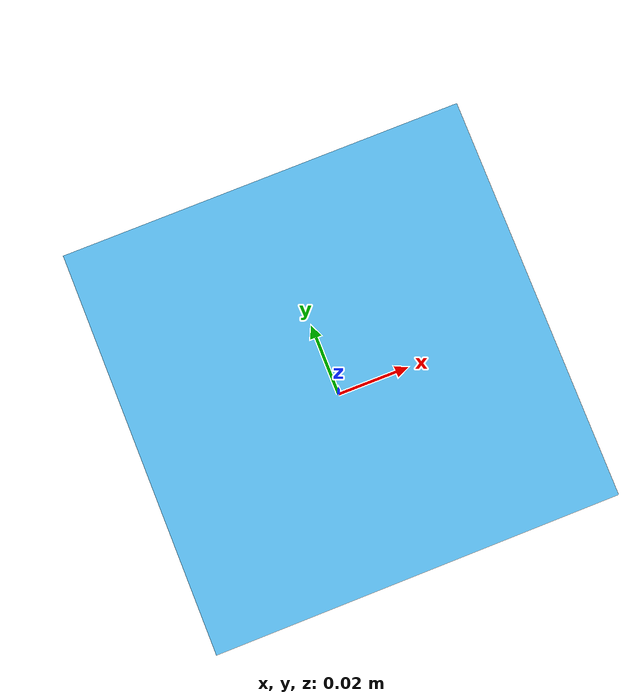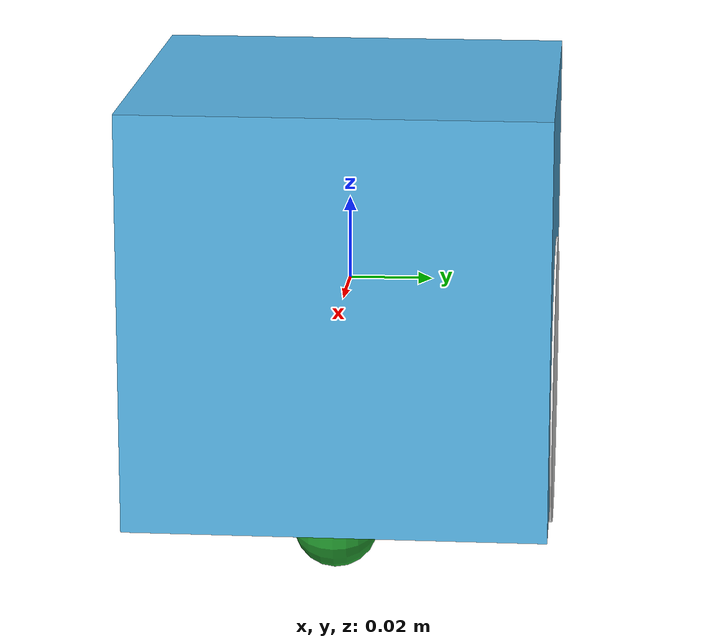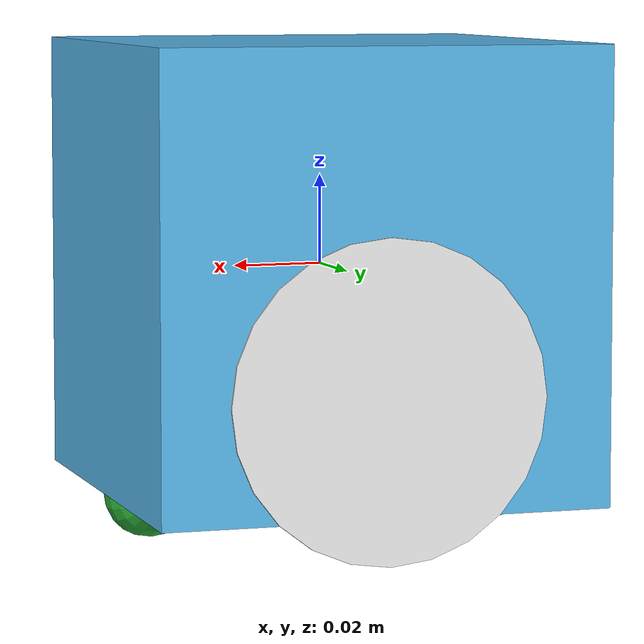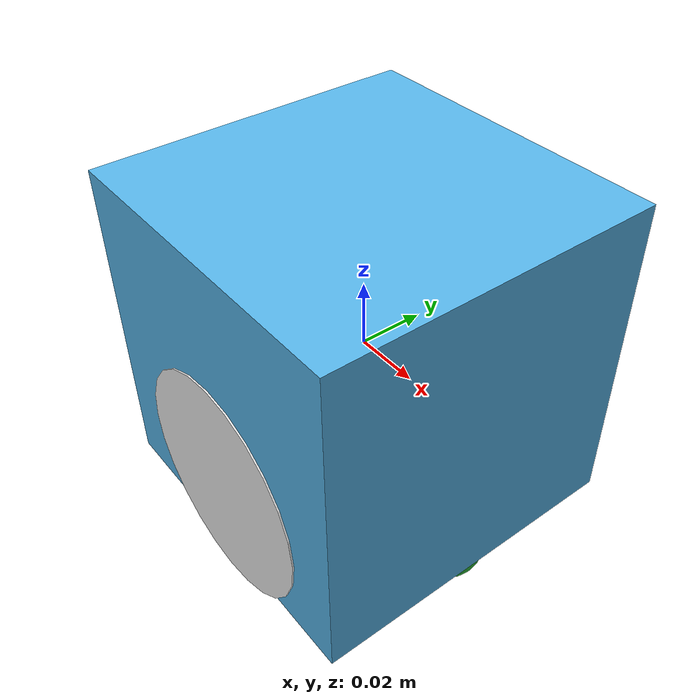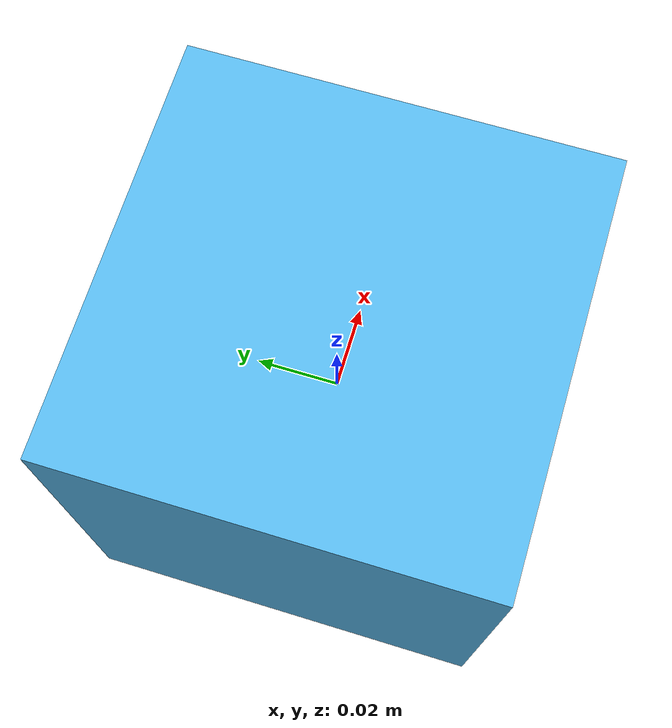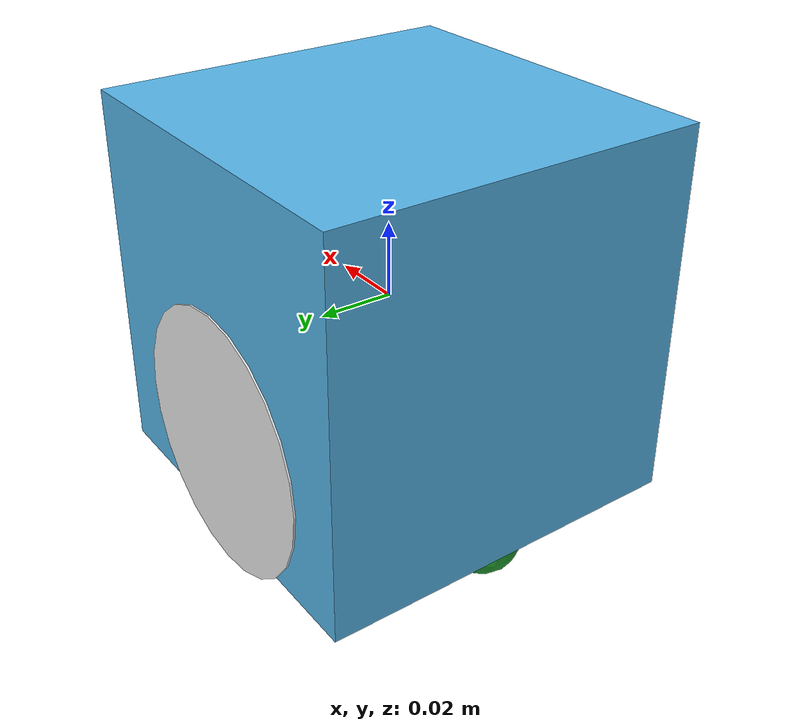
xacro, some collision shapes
<?xml version="1.0" ?>
<robot name="box_bot" xmlns:xacro="http://www.ros.org/wiki/xacro">

  <xacro:include filename="$(find box_bot_description)/robot/materials.xacro" />
  <xacro:include filename="$(find box_bot_description)/robot/properties.xacro" />
  <xacro:include filename="$(find box_bot_description)/robot/macros.xacro" />
  <xacro:include filename="$(find box_bot_description)/robot/wheels.xacro" />
  <xacro:include filename="$(find box_bot_description)/robot/caster_wheels.xacro" />
  <xacro:include filename="$(find box_bot_description)/robot/box_bot_body.xacro" />
  <xacro:include filename="$(find box_bot_description)/robot/sensors.xacro" />
  <xacro:include filename="$(find box_bot_description)/robot/box_bot.gazebo" />

  <xacro:arg name="box_bot_name" default="box_bot_1"/>

  <xacro:box_bot_body robot_name="$(arg box_bot_name)"/>

  <xacro:wheel parent="$(arg box_bot_name)_chassis" child="$(arg box_bot_name)_right_wheel" origin_xyz="0 ${-1.0 * base_box_x / 2.0} ${-1.0 * wheel_radius}" robot_name="$(arg box_bot_name)" name_wheel_link="right_wheel" r="${wheel_radius}" l="${wheel_width}" incr="${wheel_increment}"/>
  <xacro:wheel parent="$(arg box_bot_name)_chassis" child="$(arg box_bot_name)_left_wheel" origin_xyz="0 ${base_box_x / 2.0} ${-1.0 * wheel_radius}" robot_name="$(arg box_bot_name)" name_wheel_link="left_wheel" r="${wheel_radius}" l="${wheel_width}" incr="${wheel_increment}"/>

  <xacro:caster_wheel robot_name="$(arg box_bot_name)" parent="$(arg box_bot_name)_chassis" caster_wheel_name="front" origin_xyz="${(base_box_x / 2.0) - wheel_increment} 0 ${-1.0* base_box_x / 2.0}" radius="${wheel_increment}" legth="${dummy_length}"/>
  <xacro:caster_wheel robot_name="$(arg box_bot_name)" parent="$(arg box_bot_name)_chassis" caster_wheel_name="back" origin_xyz="${(-1.0 *base_box_x / 2.0) + wheel_increment} 0 ${-1.0* base_box_x / 2.0}" radius="${wheel_increment}" legth="${dummy_length}"/>

  <xacro:box_bot_gazebo_systems_slotcar robot_name="$(arg box_bot_name)" name_left_wheel_link="left_wheel" name_right_wheel_link="right_wheel"/>
  <xacro:camera_rgb robot_name="$(arg box_bot_name)" parent_name="$(arg box_bot_name)_chassis" origin_xyz="${base_box_x/ 1.9} 0.0 ${base_box_x / 2.0}" camera_ROLL="0.0" camera_PITCH="0.0" camera_YAW="0.0"/>

</robot>

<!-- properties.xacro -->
<robot xmlns:xacro="http://www.ros.org/wiki/xacro">

	<!-- Constants -->
	<xacro:property name="PI" value="3.1415926535897931"/>

	<!-- Base Box -->
    <xacro:property name="base_name" value="chassis"/>
    <xacro:property name="base_box_mass" value="1.0"/>
	<xacro:property name="base_box_x" value="0.1"/>
    <xacro:property name="base_box_y" value="0.1"/>
    <xacro:property name="base_box_z" value="0.1"/>

    <!-- Wheels -->
	<xacro:property name="wheel_radius" value="${base_box_z / 4.0}"/>
    <xacro:property name="wheel_width" value="0.001"/>
    <xacro:property name="wheel_increment" value="0.010"/>
    <xacro:property name="mu1_wheel" value="0.5"/>
    <xacro:property name="mu2_wheel" value="0.5"/>
    <xacro:property name="kp_wheel" value="1000.0"/>
    <xacro:property name="kd_wheel" value="1000.0"/>

    <xacro:property name="wheel_separation" value="${base_box_x}"/>
    <xacro:property name="wheel_diameter" value="${(base_box_z / 2.0) + 2.0 * wheel_increment}"/>
    <xacro:property name="max_wheel_torque" value="1.0"/>
    <xacro:property name="max_wheel_acceleration" value="2.0"/>

    <!--Caster Wheels-->
    <xacro:property name="dummy_length" value="0.001"/>

    <!-- Sensors -->
    <xacro:property name="sensor_mass" value="0.01"/>
    <xacro:property name="camera_box_x" value="0.02"/>
    <xacro:property name="camera_box_y" value="0.01"/>
    <xacro:property name="camera_box_z" value="0.01"/>

    <!-- Oberc Astra-->
    <xacro:property name="orbbec_astra_scale" value="1.0"/>
    <!-- RGB sensor - cam -->
    <xacro:property name="orbbec_astra_rel_rgb_px"   value="0.0" />
    <xacro:property name="orbbec_astra_rel_rgb_py"   value="-0.0125" />
    <xacro:property name="orbbec_astra_rel_rgb_pz"   value="-0.0150" />
    <!-- IR sensor - depth -->
    <xacro:property name="orbbec_astra_depth_rel_rgb_px" value="0.0" />
    <xacro:property name="orbbec_astra_depth_rel_rgb_py" value="0.0250" />
    <xacro:property name="orbbec_astra_depth_rel_rgb_pz" value="0.0" />

    <xacro:property name="M_PI" value="3.1415926535897931" />

</robot>

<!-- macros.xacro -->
<robot xmlns:xacro="http://www.ros.org/wiki/xacro">

    <xacro:macro  name="cylinder_inertia" params="mass r l">
      <inertia  ixx="${mass*(3*r*r+l*l)/12}" ixy = "0" ixz = "0"
                iyy="${mass*(3*r*r+l*l)/12}" iyz = "0"
                izz="${mass*(r*r)/2}" />
    </xacro:macro >

    <xacro:macro  name="link_wheel" params="name r l incr">
        <link name="${name}">
            <inertial>
              <mass value="0.2"/>
              <origin rpy="0 1.5707 1.5707" xyz="0 0 0"/>
               <cylinder_inertia mass="0.2" r="${r}" l="${l}" />
            </inertial>
            <collision name="link_right_wheel_collision">
              <origin rpy="0 1.5707 1.5707" xyz="0 0 0"/>
              <geometry>
                <cylinder length="${l}" radius="${r + incr}"/>
              </geometry>
            </collision>
            <visual name="link_right_wheel_visual">
              <origin rpy="0 1.5707 1.5707" xyz="0 0 0"/>
              <geometry>
                <cylinder length="${l}" radius="${r + incr}"/>
              </geometry>
            </visual>
        </link>
    </xacro:macro >

    <xacro:macro  name="joint_wheel" params="name child origin_xyz">
      <joint name="${name}" type="continuous">
        <origin rpy="0 0 0" xyz="${origin_xyz}"/>
        <child link="${child}"/>
        <parent link="link_chassis"/>
        <axis rpy="0 0 0" xyz="0 1 0"/>
        <limit effort="10000" velocity="1000"/>
        <joint_properties damping="1.0" friction="1.0"/>
      </joint>
    </xacro:macro >

</robot>

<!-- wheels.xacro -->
<robot xmlns:xacro="http://www.ros.org/wiki/xacro">

    <!-- Wheels-->
    <xacro:macro  name="wheel" params="parent child origin_xyz robot_name name_wheel_link r l incr">
      <link name="${robot_name}_${name_wheel_link}">
          <inertial>
            <mass value="0.2"/>
            <origin rpy="0 1.5707 1.5707" xyz="0 0 0"/>
              <xacro:cylinder_inertia mass="0.2" r="${r}" l="${l}" />
          </inertial>
          <collision name="${robot_name}_${name_wheel_link}_collision">
            <origin rpy="0 1.5707 1.5707" xyz="0 0 0"/>
            <geometry>
              <cylinder length="${l}" radius="${r + incr}"/>
            </geometry>
          </collision>
          <visual name="${robot_name}_${name_wheel_link}_visual">
            <origin rpy="0 1.5707 1.5707" xyz="0 0 0"/>
            <geometry>
              <cylinder length="${l}" radius="${r + incr}"/>
            </geometry>
          </visual>
      </link>

      <gazebo reference="${robot_name}_${name_wheel_link}">
        <kp>${kp_wheel}</kp>
        <kd>${kd_wheel}</kd>
        <mu1>${mu1_wheel}</mu1>
        <mu2>${mu2_wheel}</mu2>
        <material>Gazebo/White</material>
      </gazebo>

      <joint name="${robot_name}/joint_tire_${name_wheel_link}" type="continuous">
        <origin rpy="0 0 0" xyz="${origin_xyz}"/>
        <child link="${robot_name}_${name_wheel_link}"/>
        <parent link="${parent}"/>
        <axis rpy="0 0 0" xyz="0 1 0"/>
        <limit effort="10000" velocity="1000"/>
        <joint_properties damping="1.0" friction="1.0"/>
      </joint>

  </xacro:macro >

</robot>

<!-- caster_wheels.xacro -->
<robot xmlns:xacro="http://www.ros.org/wiki/xacro">

    <!-- Caster Wheels-->
    <xacro:macro  name="caster_wheel" params="parent caster_wheel_name origin_xyz radius legth">
      <!-- CASTER FRONT-->
      <link name="${caster_wheel_name}_yaw_link">
        <inertial>
            <mass value="0.001"/>
            <origin rpy="0 1.5707 1.5707" xyz="0 0 0"/>
            <cylinder_inertia mass="0.001" r="${0.9 * radius/2.0}" l="${legth}" />
          </inertial>
          <collision name="link_right_wheel_collision">
            <origin rpy="0 1.5707 1.5707" xyz="0 0 0"/>
            <geometry>
              <cylinder length="${legth}" radius="${0.9 * radius/2.0}"/>
            </geometry>
          </collision>
      </link>

      <joint name="${caster_wheel_name}_yaw_joint" type="continuous">
        <origin rpy="0 0 0" xyz="${origin_xyz}" />
        <parent link="${parent}" />
        <child link="${caster_wheel_name}_yaw_link" />
        <axis xyz="0 0 1" />
        <limit effort="1000.0" velocity="100.0" />
        <dynamics damping="0.0" friction="0.1"/>
      </joint>

      <transmission name="${caster_wheel_name}_yaw_joint_trans">
      <type>transmission_interface/SimpleTransmission</type>
      <joint name="${caster_wheel_name}_yaw_joint">
        <hardwareInterface>EffortJointInterface</hardwareInterface>
      </joint>
      <actuator name="${caster_wheel_name}_yaw_jointMotor">
        <hardwareInterface>EffortJointInterface</hardwareInterface>
        <mechanicalReduction>1</mechanicalReduction>
      </actuator>
    </transmission>

    <link name="${caster_wheel_name}_roll_link">
        <inertial>
            <mass value="0.001"/>
            <origin rpy="0 1.5707 1.5707" xyz="0 0 0"/>
            <cylinder_inertia mass="0.001" r="${0.9 * radius/2.0}" l="${legth}" />
          </inertial>
          <collision name="link_right_wheel_collision">
            <origin rpy="0 1.5707 1.5707" xyz="0 0 0"/>
            <geometry>
              <cylinder length="${legth}" radius="${0.9 * radius/2.0}"/>
            </geometry>
          </collision>
      </link>

      <joint name="${caster_wheel_name}_roll_joint" type="continuous">
        <origin rpy="0 0 0" xyz="0 0 0" />
        <parent link="${caster_wheel_name}_yaw_link" />
        <child link="${caster_wheel_name}_roll_link" />
        <axis xyz="1 0 0" />
        <limit effort="1000.0" velocity="100.0" />
        <dynamics damping="0.0" friction="0.1"/>
      </joint>

      <transmission name="${caster_wheel_name}_roll_joint_trans">
      <type>transmission_interface/SimpleTransmission</type>
      <joint name="${caster_wheel_name}_roll_joint">
        <hardwareInterface>EffortJointInterface</hardwareInterface>
      </joint>
      <actuator name="${caster_wheel_name}_roll_jointMotor">
        <hardwareInterface>EffortJointInterface</hardwareInterface>
        <mechanicalReduction>1</mechanicalReduction>
      </actuator>
    </transmission>

      <link name="${caster_wheel_name}_pitch_link">
        <inertial>
          <mass value="0.001"/>
          <origin rpy="0 1.5707 1.5707" xyz="0 0 0"/>
            <sphere_inertia mass="0.001" r="${radius}"/>
        </inertial>
        <collision name="${caster_wheel_name}_collision">
          <origin rpy="0 1.5707 1.5707" xyz="0 0 0"/>
          <geometry>
            <sphere radius="${radius}"/>
          </geometry>
        </collision>
        <visual name="${caster_wheel_name}_visual">
          <origin rpy="0 1.5707 1.5707" xyz="0 0 0"/>
          <geometry>
            <sphere radius="${radius}"/>
          </geometry>
        </visual>
      </link>

      <joint name="${caster_wheel_name}_pitch_joint" type="continuous">
        <origin rpy="0 0 0" xyz="0 0 0" />
        <parent link="${caster_wheel_name}_roll_link" />
        <child link="${caster_wheel_name}_pitch_link" />
        <axis xyz="0 1 0" />
        <limit effort="1000.0" velocity="100.0" />
        <dynamics damping="0.0" friction="0.1"/>
      </joint>

    <transmission name="${caster_wheel_name}_pitch_joint_trans">
      <type>transmission_interface/SimpleTransmission</type>
      <joint name="${caster_wheel_name}_pitch_joint">
        <hardwareInterface>EffortJointInterface</hardwareInterface>
      </joint>
      <actuator name="${caster_wheel_name}_pitch_jointMotor">
        <hardwareInterface>EffortJointInterface</hardwareInterface>
        <mechanicalReduction>1</mechanicalReduction>
      </actuator>
    </transmission>

    <gazebo reference="${caster_wheel_name}_pitch_link">
      <kp>1000000000000000000000000000.0</kp>
      <kd>1000000000000000000000000000.0</kd>
      <mu1>${mu1_wheel}</mu1>
      <mu2>${mu2_wheel}</mu2>
      <material>Gazebo/Green</material>
    </gazebo>

  </xacro:macro >

</robot>

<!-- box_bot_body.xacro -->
<robot xmlns:xacro="http://www.ros.org/wiki/xacro">

    <xacro:macro  name="box_bot_body" params="robot_name">

      <link name="${robot_name}_base_link">
      </link>

      <link name="${robot_name}_chassis">
        <visual>
          <geometry>
            <mesh filename="package://box_bot_description/meshes/${robot_name}.dae" scale="0.1 0.1 0.1"/>
          </geometry>
        </visual>

        <collision>
          <geometry>
            <box size="0.1 0.1 0.1"/>
          </geometry>
        </collision>

        <inertial>
          <mass value="0.5"/>
          <origin rpy="0 0 0" xyz="0 0 0"/>
          <inertia ixx="0.0008333333333333335" ixy="0" ixz="0" iyy="0.0008333333333333335" iyz="0" izz="0.0008333333333333335"/>
        </inertial>

      </link>

      <joint name="${robot_name}_base_link_joint" type="fixed">
        <origin rpy="0 0 0" xyz="0 0 0" />
        <parent link="${robot_name}_base_link" />
        <child link="${robot_name}_chassis" />
      </joint>

    </xacro:macro >

</robot>

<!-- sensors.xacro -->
<robot xmlns:xacro="http://www.ros.org/wiki/xacro">

  <xacro:macro name="camera_rgb" params="robot_name parent_name origin_xyz camera_ROLL camera_PITCH camera_YAW">

    <link name="${robot_name}_rgb_camera_link_frame">
    </link>

    <joint name="${robot_name}_rgb_camera_link_frame_joint" type="fixed">
        <origin rpy="${camera_ROLL} ${camera_PITCH} ${camera_YAW}" xyz="${origin_xyz}"/>
        <parent link="${parent_name}" />
        <child link="${robot_name}_rgb_camera_link_frame" />
        <axis xyz="0 0 0"/>
    </joint>

    <gazebo reference="${robot_name}_rgb_camera_link_frame">
        <sensor name="${robot_name}_camera" type="wideanglecamera">
          <camera>
            <horizontal_fov>1.0472</horizontal_fov>
            <image>
              <width>320</width>
              <height>240</height>
            </image>
            <clip>
              <near>0.1</near>
              <far>100</far>
            </clip>
            <lens>
              <type>custom</type>
              <custom_function>
                <c1>1.05</c1>
                <c2>4</c2>
                <f>1.0</f>
                <fun>tan</fun>
              </custom_function>
              <scale_to_hfov>true</scale_to_hfov>
              <cutoff_angle>3.1415</cutoff_angle>
              <env_texture_size>512</env_texture_size>
            </lens>
            <always_on>1</always_on>
            <update_rate>30</update_rate>
          </camera>
          <plugin name="camera_controller" filename="libgazebo_ros_camera.so">
            <ros>
              <namespace>${robot_name}</namespace>
            </ros>
            <cameraName>${robot_name}_rgb_camera</cameraName>
            <imageTopicName>image_raw</imageTopicName>
            <cameraInfoTopicName>camera_info</cameraInfoTopicName>
            <frameName>${robot_name}_rgb_camera_link_frame</frameName>
            <hackBaseline>0.07</hackBaseline>
          </plugin>
        </sensor>
    </gazebo>

  </xacro:macro>

  <xacro:macro name="laser_scan" params="robot_name parent_name origin_xyz sensor_YAW">
      <link name="${robot_name}_laser_scan_model_link">
        <visual name="${robot_name}_visual_laser_scan_link">
          <origin rpy="0 0 0" xyz="0 0 0"/>
          <geometry>
            <mesh filename="package://box_bot_description/meshes/sensors/rplidar.dae" scale="1.0 1.0 1.0"/>
          </geometry>
        </visual>

        <collision name="${robot_name}_collision_laser_scan_link">
          <origin rpy="0 0 0" xyz="0 0 0.0204"/>
          <geometry>
            <cylinder length="0.0408" radius="0.037493"/>
          </geometry>
        </collision>

        <inertial>

          <mass value="0.01"/>
          <origin rpy="0 0 0" xyz="0 0 0.0204"/>
          <inertia ixx="6.066578520833334e-06" ixy="0" ixz="0" iyy="6.066578520833334e-06" iyz="0" izz="9.365128684166666e-06"/>
        </inertial>
      </link>

    <joint name="${robot_name}_laser_scan_model_link_joint" type="fixed">
        <origin xyz="${origin_xyz}" rpy="0 0 ${sensor_YAW}" />
        <parent link="${parent_name}" />
        <child link="${robot_name}_laser_scan_model_link" />
    </joint>

    <link name="${robot_name}_laser_scan_frame">
    </link>

    <joint name="${robot_name}_laser_scan_frame_joint" type="fixed">
        <origin xyz="0 0 0.03" rpy="0 0 ${sensor_YAW}" />
        <parent link="${robot_name}_laser_scan_model_link" />
        <child link="${robot_name}_laser_scan_frame" />
    </joint>

    <gazebo reference="${robot_name}_laser_scan_frame">
      <sensor name="sensor_ray" type="ray">
          <pose>0 0 0 0 0 0</pose>
          <ray>
            <scan>
              <horizontal>
                <samples>200</samples>
                <resolution>1.0</resolution>
                <min_angle>-3.14</min_angle>
                <max_angle>3.14</max_angle>
              </horizontal>
            </scan>
            <range>
              <min>0.1</min>
              <max>5.0</max>
            </range>
          </ray>
          <always_on>true</always_on>
          <visualize>true</visualize>
          <update_rate>100.0</update_rate>
          <plugin name="laser" filename="libgazebo_ros_ray_sensor.so">
            <ros>
              <namespace>${robot_name}</namespace>
              <remapping>~/out:=laser_scan</remapping>
            </ros>
            <frame_name>${robot_name}_laser_scan_frame</frame_name>
            <output_type>sensor_msgs/LaserScan</output_type>
          </plugin>
        </sensor>
    </gazebo>

  </xacro:macro>

<xacro:macro name="point_cloud_sensor" params="robot_name parent_name sensor_name origin_xyz sensor_YAW">

  <link name='${robot_name}_pointcloud_link'>
	</link>

  <joint name="${robot_name}_pointcloud_link_joint" type="fixed">
		<origin rpy="0 0 ${sensor_YAW}" xyz="${origin_xyz}"/>
		<parent link="${parent_name}"/>
		<child link="${robot_name}_pointcloud_link"/>
	</joint>

    <gazebo reference="${robot_name}_pointcloud_link">
        <sensor type="ray" name="${robot_name}_pointcloud_sensor">
            <ray>
            <scan>
                <horizontal>
                    <samples>50</samples>
                    <resolution>1.0</resolution>
                    <min_angle>-1.0</min_angle>
                    <max_angle>1.0</max_angle>
                </horizontal>
                <vertical>
                    <samples>50</samples>
                    <resolution>1.0</resolution>
                    <min_angle>-1.0</min_angle>
                    <max_angle>1.0</max_angle>
                </vertical>
            </scan>
            <range>
                <min>0.10</min>
                <max>5.0</max>
                <resolution>0.01</resolution>
            </range>
            <!-- Using gazebo's noise instead of plugin's -->
            <noise>
                <type>gaussian</type>
                <mean>0.0</mean>
                <stddev>0.01</stddev>
            </noise>
            </ray>
            <!-- Using gazebo's update rate instead of plugin's -->
            <update_rate>30</update_rate>
            <plugin name="gazebo_ros_block_laser_controller" filename="libgazebo_ros_ray_sensor.so">
            <!-- Change namespace and output topic so published topic is /rrbot/laser/pointcloud -->
            <ros>
                <namespace>${robot_name}</namespace>
                <argument>--ros-args --remap ~/out:=pointcloud</argument>

            </ros>
            <!-- Set output to sensor_msgs/PointCloud to get same output type as gazebo_ros_block_laser -->
            <output_type>sensor_msgs/PointCloud</output_type>
            <frame_name>${robot_name}_pointcloud_link</frame_name>
            <!-- min_intensity instead of hokuyoMinIntensity -->
            <min_intensity>100.0</min_intensity>
            </plugin>
        </sensor>
    </gazebo>

</xacro:macro>

</robot>
